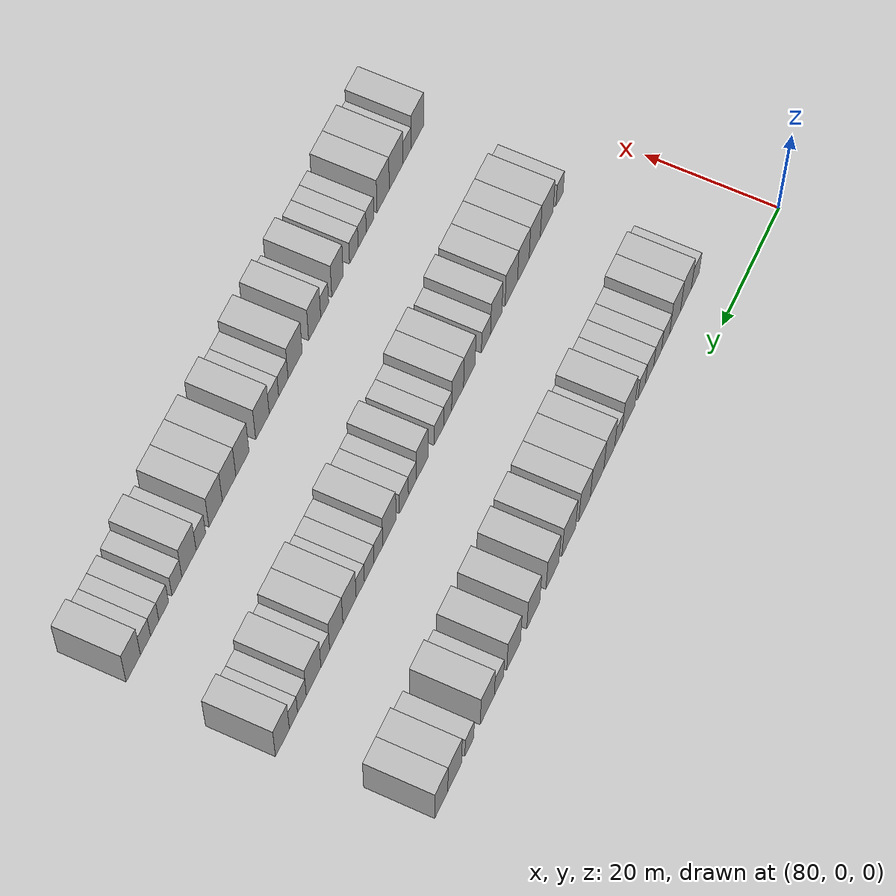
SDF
<sdf version="1.6">
 <world name="default">
  <model name="building_659">
   <static>1</static>
   <pose>91.0000 15.3468 0 0.000000 0.000000 0.000000</pose>
   <link name="link">
    <pose>0 0 3.00 0 0 0</pose>
    <collision name="collision"><geometry><box><size>10.0000 2.7629 6.0000</size></box></geometry></collision>
    <visual name="visual">
     <cast_shadows>0</cast_shadows>
     <geometry><box><size>10.0000 2.7629 6.0000</size></box></geometry>
     <material>
      <script>
       <uri>model://HANNAS_wall/materials/scripts</uri>
       <uri>model://HANNAS_wall/materials/textures</uri>
       <name>vrc/HANNAS_wall</name>
      </script>
     </material>
    </visual>
   </link>
  </model>
  <model name="building_660">
   <static>1</static>
   <pose>91.0000 18.6175 0 0.000000 0.000000 0.000000</pose>
   <link name="link">
    <pose>0 0 4.50 0 0 0</pose>
    <collision name="collision"><geometry><box><size>10.0000 3.7784 9.0000</size></box></geometry></collision>
    <visual name="visual">
     <cast_shadows>0</cast_shadows>
     <geometry><box><size>10.0000 3.7784 9.0000</size></box></geometry>
     <material>
      <script>
       <uri>model://HANNAS_wall/materials/scripts</uri>
       <uri>model://HANNAS_wall/materials/textures</uri>
       <name>vrc/HANNAS_wall</name>
      </script>
     </material>
    </visual>
   </link>
  </model>
  <model name="building_661">
   <static>1</static>
   <pose>91.0000 22.3762 0 0.000000 0.000000 0.000000</pose>
   <link name="link">
    <pose>0 0 4.50 0 0 0</pose>
    <collision name="collision"><geometry><box><size>10.0000 3.7389 9.0000</size></box></geometry></collision>
    <visual name="visual">
     <cast_shadows>0</cast_shadows>
     <geometry><box><size>10.0000 3.7389 9.0000</size></box></geometry>
     <material>
      <script>
       <uri>model://HANNAS_wall/materials/scripts</uri>
       <uri>model://HANNAS_wall/materials/textures</uri>
       <name>vrc/HANNAS_wall</name>
      </script>
     </material>
    </visual>
   </link>
  </model>
  <model name="building_662">
   <static>1</static>
   <pose>91.0000 25.6516 0 0.000000 0.000000 0.000000</pose>
   <link name="link">
    <pose>0 0 3.00 0 0 0</pose>
    <collision name="collision"><geometry><box><size>10.0000 2.8118 6.0000</size></box></geometry></collision>
    <visual name="visual">
     <cast_shadows>0</cast_shadows>
     <geometry><box><size>10.0000 2.8118 6.0000</size></box></geometry>
     <material>
      <script>
       <uri>model://HANNAS_wall/materials/scripts</uri>
       <uri>model://HANNAS_wall/materials/textures</uri>
       <name>vrc/HANNAS_wall</name>
      </script>
     </material>
    </visual>
   </link>
  </model>
  <model name="building_663">
   <static>1</static>
   <pose>91.0000 28.4060 0 0.000000 0.000000 0.000000</pose>
   <link name="link">
    <pose>0 0 3.00 0 0 0</pose>
    <collision name="collision"><geometry><box><size>10.0000 2.6970 6.0000</size></box></geometry></collision>
    <visual name="visual">
     <cast_shadows>0</cast_shadows>
     <geometry><box><size>10.0000 2.6970 6.0000</size></box></geometry>
     <material>
      <script>
       <uri>model://HANNAS_wall/materials/scripts</uri>
       <uri>model://HANNAS_wall/materials/textures</uri>
       <name>vrc/HANNAS_wall</name>
      </script>
     </material>
    </visual>
   </link>
  </model>
  <model name="building_664">
   <static>1</static>
   <pose>91.0000 31.1740 0 0.000000 0.000000 0.000000</pose>
   <link name="link">
    <pose>0 0 3.00 0 0 0</pose>
    <collision name="collision"><geometry><box><size>10.0000 2.8390 6.0000</size></box></geometry></collision>
    <visual name="visual">
     <cast_shadows>0</cast_shadows>
     <geometry><box><size>10.0000 2.8390 6.0000</size></box></geometry>
     <material>
      <script>
       <uri>model://HANNAS_wall/materials/scripts</uri>
       <uri>model://HANNAS_wall/materials/textures</uri>
       <name>vrc/HANNAS_wall</name>
      </script>
     </material>
    </visual>
   </link>
  </model>
  <model name="building_665">
   <static>1</static>
   <pose>91.0000 33.8432 0 0.000000 0.000000 0.000000</pose>
   <link name="link">
    <pose>0 0 3.00 0 0 0</pose>
    <collision name="collision"><geometry><box><size>10.0000 2.4995 6.0000</size></box></geometry></collision>
    <visual name="visual">
     <cast_shadows>0</cast_shadows>
     <geometry><box><size>10.0000 2.4995 6.0000</size></box></geometry>
     <material>
      <script>
       <uri>model://HANNAS_wall/materials/scripts</uri>
       <uri>model://HANNAS_wall/materials/textures</uri>
       <name>vrc/HANNAS_wall</name>
      </script>
     </material>
    </visual>
   </link>
  </model>
  <model name="building_666">
   <static>1</static>
   <pose>91.0000 38.2791 0 0.000000 0.000000 0.000000</pose>
   <link name="link">
    <pose>0 0 4.50 0 0 0</pose>
    <collision name="collision"><geometry><box><size>10.0000 4.3723 9.0000</size></box></geometry></collision>
    <visual name="visual">
     <cast_shadows>0</cast_shadows>
     <geometry><box><size>10.0000 4.3723 9.0000</size></box></geometry>
     <material>
      <script>
       <uri>model://HANNAS_wall/materials/scripts</uri>
       <uri>model://HANNAS_wall/materials/textures</uri>
       <name>vrc/HANNAS_wall</name>
      </script>
     </material>
    </visual>
   </link>
  </model>
  <model name="building_667">
   <static>1</static>
   <pose>91.0000 41.6919 0 0.000000 0.000000 0.000000</pose>
   <link name="link">
    <pose>0 0 3.00 0 0 0</pose>
    <collision name="collision"><geometry><box><size>10.0000 2.4534 6.0000</size></box></geometry></collision>
    <visual name="visual">
     <cast_shadows>0</cast_shadows>
     <geometry><box><size>10.0000 2.4534 6.0000</size></box></geometry>
     <material>
      <script>
       <uri>model://HANNAS_wall/materials/scripts</uri>
       <uri>model://HANNAS_wall/materials/textures</uri>
       <name>vrc/HANNAS_wall</name>
      </script>
     </material>
    </visual>
   </link>
  </model>
  <model name="building_668">
   <static>1</static>
   <pose>91.0000 44.7251 0 0.000000 0.000000 0.000000</pose>
   <link name="link">
    <pose>0 0 4.50 0 0 0</pose>
    <collision name="collision"><geometry><box><size>10.0000 3.6130 9.0000</size></box></geometry></collision>
    <visual name="visual">
     <cast_shadows>0</cast_shadows>
     <geometry><box><size>10.0000 3.6130 9.0000</size></box></geometry>
     <material>
      <script>
       <uri>model://HANNAS_wall/materials/scripts</uri>
       <uri>model://HANNAS_wall/materials/textures</uri>
       <name>vrc/HANNAS_wall</name>
      </script>
     </material>
    </visual>
   </link>
  </model>
  <model name="building_669">
   <static>1</static>
   <pose>91.0000 48.7719 0 0.000000 0.000000 0.000000</pose>
   <link name="link">
    <pose>0 0 4.50 0 0 0</pose>
    <collision name="collision"><geometry><box><size>10.0000 4.4805 9.0000</size></box></geometry></collision>
    <visual name="visual">
     <cast_shadows>0</cast_shadows>
     <geometry><box><size>10.0000 4.4805 9.0000</size></box></geometry>
     <material>
      <script>
       <uri>model://HANNAS_wall/materials/scripts</uri>
       <uri>model://HANNAS_wall/materials/textures</uri>
       <name>vrc/HANNAS_wall</name>
      </script>
     </material>
    </visual>
   </link>
  </model>
  <model name="building_670">
   <static>1</static>
   <pose>91.0000 52.9285 0 0.000000 0.000000 0.000000</pose>
   <link name="link">
    <pose>0 0 4.50 0 0 0</pose>
    <collision name="collision"><geometry><box><size>10.0000 3.8328 9.0000</size></box></geometry></collision>
    <visual name="visual">
     <cast_shadows>0</cast_shadows>
     <geometry><box><size>10.0000 3.8328 9.0000</size></box></geometry>
     <material>
      <script>
       <uri>model://HANNAS_wall/materials/scripts</uri>
       <uri>model://HANNAS_wall/materials/textures</uri>
       <name>vrc/HANNAS_wall</name>
      </script>
     </material>
    </visual>
   </link>
  </model>
  <model name="building_671">
   <static>1</static>
   <pose>91.0000 58.0701 0 0.000000 0.000000 0.000000</pose>
   <link name="link">
    <pose>0 0 4.50 0 0 0</pose>
    <collision name="collision"><geometry><box><size>10.0000 4.4502 9.0000</size></box></geometry></collision>
    <visual name="visual">
     <cast_shadows>0</cast_shadows>
     <geometry><box><size>10.0000 4.4502 9.0000</size></box></geometry>
     <material>
      <script>
       <uri>model://HANNAS_wall/materials/scripts</uri>
       <uri>model://HANNAS_wall/materials/textures</uri>
       <name>vrc/HANNAS_wall</name>
      </script>
     </material>
    </visual>
   </link>
  </model>
  <model name="building_672">
   <static>1</static>
   <pose>91.0000 63.3737 0 0.000000 0.000000 0.000000</pose>
   <link name="link">
    <pose>0 0 4.50 0 0 0</pose>
    <collision name="collision"><geometry><box><size>10.0000 4.1570 9.0000</size></box></geometry></collision>
    <visual name="visual">
     <cast_shadows>0</cast_shadows>
     <geometry><box><size>10.0000 4.1570 9.0000</size></box></geometry>
     <material>
      <script>
       <uri>model://HANNAS_wall/materials/scripts</uri>
       <uri>model://HANNAS_wall/materials/textures</uri>
       <name>vrc/HANNAS_wall</name>
      </script>
     </material>
    </visual>
   </link>
  </model>
  <model name="building_673">
   <static>1</static>
   <pose>91.0000 69.5273 0 0.000000 0.000000 0.000000</pose>
   <link name="link">
    <pose>0 0 4.50 0 0 0</pose>
    <collision name="collision"><geometry><box><size>10.0000 4.1501 9.0000</size></box></geometry></collision>
    <visual name="visual">
     <cast_shadows>0</cast_shadows>
     <geometry><box><size>10.0000 4.1501 9.0000</size></box></geometry>
     <material>
      <script>
       <uri>model://HANNAS_wall/materials/scripts</uri>
       <uri>model://HANNAS_wall/materials/textures</uri>
       <name>vrc/HANNAS_wall</name>
      </script>
     </material>
    </visual>
   </link>
  </model>
  <model name="building_674">
   <static>1</static>
   <pose>91.0000 75.7723 0 0.000000 0.000000 0.000000</pose>
   <link name="link">
    <pose>0 0 4.50 0 0 0</pose>
    <collision name="collision"><geometry><box><size>10.0000 4.3399 9.0000</size></box></geometry></collision>
    <visual name="visual">
     <cast_shadows>0</cast_shadows>
     <geometry><box><size>10.0000 4.3399 9.0000</size></box></geometry>
     <material>
      <script>
       <uri>model://HANNAS_wall/materials/scripts</uri>
       <uri>model://HANNAS_wall/materials/textures</uri>
       <name>vrc/HANNAS_wall</name>
      </script>
     </material>
    </visual>
   </link>
  </model>
  <model name="building_675">
   <static>1</static>
   <pose>91.0000 80.3836 0 0.000000 0.000000 0.000000</pose>
   <link name="link">
    <pose>0 0 3.00 0 0 0</pose>
    <collision name="collision"><geometry><box><size>10.0000 2.8828 6.0000</size></box></geometry></collision>
    <visual name="visual">
     <cast_shadows>0</cast_shadows>
     <geometry><box><size>10.0000 2.8828 6.0000</size></box></geometry>
     <material>
      <script>
       <uri>model://HANNAS_wall/materials/scripts</uri>
       <uri>model://HANNAS_wall/materials/textures</uri>
       <name>vrc/HANNAS_wall</name>
      </script>
     </material>
    </visual>
   </link>
  </model>
  <model name="building_676">
   <static>1</static>
   <pose>91.0000 84.0200 0 0.000000 0.000000 0.000000</pose>
   <link name="link">
    <pose>0 0 4.50 0 0 0</pose>
    <collision name="collision"><geometry><box><size>10.0000 4.3899 9.0000</size></box></geometry></collision>
    <visual name="visual">
     <cast_shadows>0</cast_shadows>
     <geometry><box><size>10.0000 4.3899 9.0000</size></box></geometry>
     <material>
      <script>
       <uri>model://HANNAS_wall/materials/scripts</uri>
       <uri>model://HANNAS_wall/materials/textures</uri>
       <name>vrc/HANNAS_wall</name>
      </script>
     </material>
    </visual>
   </link>
  </model>
  <model name="building_677">
   <static>1</static>
   <pose>91.0000 89.5846 0 0.000000 0.000000 0.000000</pose>
   <link name="link">
    <pose>0 0 3.00 0 0 0</pose>
    <collision name="collision"><geometry><box><size>10.0000 2.7393 6.0000</size></box></geometry></collision>
    <visual name="visual">
     <cast_shadows>0</cast_shadows>
     <geometry><box><size>10.0000 2.7393 6.0000</size></box></geometry>
     <material>
      <script>
       <uri>model://HANNAS_wall/materials/scripts</uri>
       <uri>model://HANNAS_wall/materials/textures</uri>
       <name>vrc/HANNAS_wall</name>
      </script>
     </material>
    </visual>
   </link>
  </model>
  <model name="building_678">
   <static>1</static>
   <pose>91.0000 94.0769 0 0.000000 0.000000 0.000000</pose>
   <link name="link">
    <pose>0 0 4.50 0 0 0</pose>
    <collision name="collision"><geometry><box><size>10.0000 4.2452 9.0000</size></box></geometry></collision>
    <visual name="visual">
     <cast_shadows>0</cast_shadows>
     <geometry><box><size>10.0000 4.2452 9.0000</size></box></geometry>
     <material>
      <script>
       <uri>model://HANNAS_wall/materials/scripts</uri>
       <uri>model://HANNAS_wall/materials/textures</uri>
       <name>vrc/HANNAS_wall</name>
      </script>
     </material>
    </visual>
   </link>
  </model>
  <model name="building_679">
   <static>1</static>
   <pose>91.0000 98.1756 0 0.000000 0.000000 0.000000</pose>
   <link name="link">
    <pose>0 0 4.50 0 0 0</pose>
    <collision name="collision"><geometry><box><size>10.0000 3.9523 9.0000</size></box></geometry></collision>
    <visual name="visual">
     <cast_shadows>0</cast_shadows>
     <geometry><box><size>10.0000 3.9523 9.0000</size></box></geometry>
     <material>
      <script>
       <uri>model://HANNAS_wall/materials/scripts</uri>
       <uri>model://HANNAS_wall/materials/textures</uri>
       <name>vrc/HANNAS_wall</name>
      </script>
     </material>
    </visual>
   </link>
  </model>
  <model name="building_828">
   <static>1</static>
   <pose>113.0000 11.4214 0 0.000000 0.000000 0.000000</pose>
   <link name="link">
    <pose>0 0 3.00 0 0 0</pose>
    <collision name="collision"><geometry><box><size>10.0000 2.4362 6.0000</size></box></geometry></collision>
    <visual name="visual">
     <cast_shadows>0</cast_shadows>
     <geometry><box><size>10.0000 2.4362 6.0000</size></box></geometry>
     <material>
      <script>
       <uri>model://HANNAS_wall/materials/scripts</uri>
       <uri>model://HANNAS_wall/materials/textures</uri>
       <name>vrc/HANNAS_wall</name>
      </script>
     </material>
    </visual>
   </link>
  </model>
  <model name="building_829">
   <static>1</static>
   <pose>113.0000 15.8109 0 0.000000 0.000000 0.000000</pose>
   <link name="link">
    <pose>0 0 4.50 0 0 0</pose>
    <collision name="collision"><geometry><box><size>10.0000 4.3428 9.0000</size></box></geometry></collision>
    <visual name="visual">
     <cast_shadows>0</cast_shadows>
     <geometry><box><size>10.0000 4.3428 9.0000</size></box></geometry>
     <material>
      <script>
       <uri>model://HANNAS_wall/materials/scripts</uri>
       <uri>model://HANNAS_wall/materials/textures</uri>
       <name>vrc/HANNAS_wall</name>
      </script>
     </material>
    </visual>
   </link>
  </model>
  <model name="building_830">
   <static>1</static>
   <pose>113.0000 19.8639 0 0.000000 0.000000 0.000000</pose>
   <link name="link">
    <pose>0 0 4.50 0 0 0</pose>
    <collision name="collision"><geometry><box><size>10.0000 3.7632 9.0000</size></box></geometry></collision>
    <visual name="visual">
     <cast_shadows>0</cast_shadows>
     <geometry><box><size>10.0000 3.7632 9.0000</size></box></geometry>
     <material>
      <script>
       <uri>model://HANNAS_wall/materials/scripts</uri>
       <uri>model://HANNAS_wall/materials/textures</uri>
       <name>vrc/HANNAS_wall</name>
      </script>
     </material>
    </visual>
   </link>
  </model>
  <model name="building_831">
   <static>1</static>
   <pose>113.0000 23.6717 0 0.000000 0.000000 0.000000</pose>
   <link name="link">
    <pose>0 0 4.50 0 0 0</pose>
    <collision name="collision"><geometry><box><size>10.0000 3.8522 9.0000</size></box></geometry></collision>
    <visual name="visual">
     <cast_shadows>0</cast_shadows>
     <geometry><box><size>10.0000 3.8522 9.0000</size></box></geometry>
     <material>
      <script>
       <uri>model://HANNAS_wall/materials/scripts</uri>
       <uri>model://HANNAS_wall/materials/textures</uri>
       <name>vrc/HANNAS_wall</name>
      </script>
     </material>
    </visual>
   </link>
  </model>
  <model name="building_832">
   <static>1</static>
   <pose>113.0000 27.6825 0 0.000000 0.000000 0.000000</pose>
   <link name="link">
    <pose>0 0 4.50 0 0 0</pose>
    <collision name="collision"><geometry><box><size>10.0000 4.1694 9.0000</size></box></geometry></collision>
    <visual name="visual">
     <cast_shadows>0</cast_shadows>
     <geometry><box><size>10.0000 4.1694 9.0000</size></box></geometry>
     <material>
      <script>
       <uri>model://HANNAS_wall/materials/scripts</uri>
       <uri>model://HANNAS_wall/materials/textures</uri>
       <name>vrc/HANNAS_wall</name>
      </script>
     </material>
    </visual>
   </link>
  </model>
  <model name="building_833">
   <static>1</static>
   <pose>113.0000 32.6495 0 0.000000 0.000000 0.000000</pose>
   <link name="link">
    <pose>0 0 4.50 0 0 0</pose>
    <collision name="collision"><geometry><box><size>10.0000 3.7647 9.0000</size></box></geometry></collision>
    <visual name="visual">
     <cast_shadows>0</cast_shadows>
     <geometry><box><size>10.0000 3.7647 9.0000</size></box></geometry>
     <material>
      <script>
       <uri>model://HANNAS_wall/materials/scripts</uri>
       <uri>model://HANNAS_wall/materials/textures</uri>
       <name>vrc/HANNAS_wall</name>
      </script>
     </material>
    </visual>
   </link>
  </model>
  <model name="building_834">
   <static>1</static>
   <pose>113.0000 36.0268 0 0.000000 0.000000 0.000000</pose>
   <link name="link">
    <pose>0 0 3.00 0 0 0</pose>
    <collision name="collision"><geometry><box><size>10.0000 2.9899 6.0000</size></box></geometry></collision>
    <visual name="visual">
     <cast_shadows>0</cast_shadows>
     <geometry><box><size>10.0000 2.9899 6.0000</size></box></geometry>
     <material>
      <script>
       <uri>model://HANNAS_wall/materials/scripts</uri>
       <uri>model://HANNAS_wall/materials/textures</uri>
       <name>vrc/HANNAS_wall</name>
      </script>
     </material>
    </visual>
   </link>
  </model>
  <model name="building_835">
   <static>1</static>
   <pose>113.0000 41.4151 0 0.000000 0.000000 0.000000</pose>
   <link name="link">
    <pose>0 0 4.50 0 0 0</pose>
    <collision name="collision"><geometry><box><size>10.0000 3.7868 9.0000</size></box></geometry></collision>
    <visual name="visual">
     <cast_shadows>0</cast_shadows>
     <geometry><box><size>10.0000 3.7868 9.0000</size></box></geometry>
     <material>
      <script>
       <uri>model://HANNAS_wall/materials/scripts</uri>
       <uri>model://HANNAS_wall/materials/textures</uri>
       <name>vrc/HANNAS_wall</name>
      </script>
     </material>
    </visual>
   </link>
  </model>
  <model name="building_836">
   <static>1</static>
   <pose>113.0000 45.2289 0 0.000000 0.000000 0.000000</pose>
   <link name="link">
    <pose>0 0 4.50 0 0 0</pose>
    <collision name="collision"><geometry><box><size>10.0000 3.8407 9.0000</size></box></geometry></collision>
    <visual name="visual">
     <cast_shadows>0</cast_shadows>
     <geometry><box><size>10.0000 3.8407 9.0000</size></box></geometry>
     <material>
      <script>
       <uri>model://HANNAS_wall/materials/scripts</uri>
       <uri>model://HANNAS_wall/materials/textures</uri>
       <name>vrc/HANNAS_wall</name>
      </script>
     </material>
    </visual>
   </link>
  </model>
  <model name="building_837">
   <static>1</static>
   <pose>113.0000 48.4443 0 0.000000 0.000000 0.000000</pose>
   <link name="link">
    <pose>0 0 3.00 0 0 0</pose>
    <collision name="collision"><geometry><box><size>10.0000 2.5900 6.0000</size></box></geometry></collision>
    <visual name="visual">
     <cast_shadows>0</cast_shadows>
     <geometry><box><size>10.0000 2.5900 6.0000</size></box></geometry>
     <material>
      <script>
       <uri>model://HANNAS_wall/materials/scripts</uri>
       <uri>model://HANNAS_wall/materials/textures</uri>
       <name>vrc/HANNAS_wall</name>
      </script>
     </material>
    </visual>
   </link>
  </model>
  <model name="building_838">
   <static>1</static>
   <pose>113.0000 51.2341 0 0.000000 0.000000 0.000000</pose>
   <link name="link">
    <pose>0 0 3.00 0 0 0</pose>
    <collision name="collision"><geometry><box><size>10.0000 2.9896 6.0000</size></box></geometry></collision>
    <visual name="visual">
     <cast_shadows>0</cast_shadows>
     <geometry><box><size>10.0000 2.9896 6.0000</size></box></geometry>
     <material>
      <script>
       <uri>model://HANNAS_wall/materials/scripts</uri>
       <uri>model://HANNAS_wall/materials/textures</uri>
       <name>vrc/HANNAS_wall</name>
      </script>
     </material>
    </visual>
   </link>
  </model>
  <model name="building_839">
   <static>1</static>
   <pose>113.0000 56.5635 0 0.000000 0.000000 0.000000</pose>
   <link name="link">
    <pose>0 0 4.50 0 0 0</pose>
    <collision name="collision"><geometry><box><size>10.0000 3.6692 9.0000</size></box></geometry></collision>
    <visual name="visual">
     <cast_shadows>0</cast_shadows>
     <geometry><box><size>10.0000 3.6692 9.0000</size></box></geometry>
     <material>
      <script>
       <uri>model://HANNAS_wall/materials/scripts</uri>
       <uri>model://HANNAS_wall/materials/textures</uri>
       <name>vrc/HANNAS_wall</name>
      </script>
     </material>
    </visual>
   </link>
  </model>
  <model name="building_840">
   <static>1</static>
   <pose>113.0000 59.6320 0 0.000000 0.000000 0.000000</pose>
   <link name="link">
    <pose>0 0 3.00 0 0 0</pose>
    <collision name="collision"><geometry><box><size>10.0000 2.4679 6.0000</size></box></geometry></collision>
    <visual name="visual">
     <cast_shadows>0</cast_shadows>
     <geometry><box><size>10.0000 2.4679 6.0000</size></box></geometry>
     <material>
      <script>
       <uri>model://HANNAS_wall/materials/scripts</uri>
       <uri>model://HANNAS_wall/materials/textures</uri>
       <name>vrc/HANNAS_wall</name>
      </script>
     </material>
    </visual>
   </link>
  </model>
  <model name="building_841">
   <static>1</static>
   <pose>113.0000 62.2897 0 0.000000 0.000000 0.000000</pose>
   <link name="link">
    <pose>0 0 3.00 0 0 0</pose>
    <collision name="collision"><geometry><box><size>10.0000 2.8473 6.0000</size></box></geometry></collision>
    <visual name="visual">
     <cast_shadows>0</cast_shadows>
     <geometry><box><size>10.0000 2.8473 6.0000</size></box></geometry>
     <material>
      <script>
       <uri>model://HANNAS_wall/materials/scripts</uri>
       <uri>model://HANNAS_wall/materials/textures</uri>
       <name>vrc/HANNAS_wall</name>
      </script>
     </material>
    </visual>
   </link>
  </model>
  <model name="building_842">
   <static>1</static>
   <pose>113.0000 66.7832 0 0.000000 0.000000 0.000000</pose>
   <link name="link">
    <pose>0 0 4.50 0 0 0</pose>
    <collision name="collision"><geometry><box><size>10.0000 4.1398 9.0000</size></box></geometry></collision>
    <visual name="visual">
     <cast_shadows>0</cast_shadows>
     <geometry><box><size>10.0000 4.1398 9.0000</size></box></geometry>
     <material>
      <script>
       <uri>model://HANNAS_wall/materials/scripts</uri>
       <uri>model://HANNAS_wall/materials/textures</uri>
       <name>vrc/HANNAS_wall</name>
      </script>
     </material>
    </visual>
   </link>
  </model>
  <model name="building_843">
   <static>1</static>
   <pose>113.0000 70.2111 0 0.000000 0.000000 0.000000</pose>
   <link name="link">
    <pose>0 0 3.00 0 0 0</pose>
    <collision name="collision"><geometry><box><size>10.0000 2.7159 6.0000</size></box></geometry></collision>
    <visual name="visual">
     <cast_shadows>0</cast_shadows>
     <geometry><box><size>10.0000 2.7159 6.0000</size></box></geometry>
     <material>
      <script>
       <uri>model://HANNAS_wall/materials/scripts</uri>
       <uri>model://HANNAS_wall/materials/textures</uri>
       <name>vrc/HANNAS_wall</name>
      </script>
     </material>
    </visual>
   </link>
  </model>
  <model name="building_844">
   <static>1</static>
   <pose>113.0000 73.0500 0 0.000000 0.000000 0.000000</pose>
   <link name="link">
    <pose>0 0 3.00 0 0 0</pose>
    <collision name="collision"><geometry><box><size>10.0000 2.9618 6.0000</size></box></geometry></collision>
    <visual name="visual">
     <cast_shadows>0</cast_shadows>
     <geometry><box><size>10.0000 2.9618 6.0000</size></box></geometry>
     <material>
      <script>
       <uri>model://HANNAS_wall/materials/scripts</uri>
       <uri>model://HANNAS_wall/materials/textures</uri>
       <name>vrc/HANNAS_wall</name>
      </script>
     </material>
    </visual>
   </link>
  </model>
  <model name="building_845">
   <static>1</static>
   <pose>113.0000 75.7841 0 0.000000 0.000000 0.000000</pose>
   <link name="link">
    <pose>0 0 3.00 0 0 0</pose>
    <collision name="collision"><geometry><box><size>10.0000 2.5065 6.0000</size></box></geometry></collision>
    <visual name="visual">
     <cast_shadows>0</cast_shadows>
     <geometry><box><size>10.0000 2.5065 6.0000</size></box></geometry>
     <material>
      <script>
       <uri>model://HANNAS_wall/materials/scripts</uri>
       <uri>model://HANNAS_wall/materials/textures</uri>
       <name>vrc/HANNAS_wall</name>
      </script>
     </material>
    </visual>
   </link>
  </model>
  <model name="building_846">
   <static>1</static>
   <pose>113.0000 79.0547 0 0.000000 0.000000 0.000000</pose>
   <link name="link">
    <pose>0 0 4.50 0 0 0</pose>
    <collision name="collision"><geometry><box><size>10.0000 4.0345 9.0000</size></box></geometry></collision>
    <visual name="visual">
     <cast_shadows>0</cast_shadows>
     <geometry><box><size>10.0000 4.0345 9.0000</size></box></geometry>
     <material>
      <script>
       <uri>model://HANNAS_wall/materials/scripts</uri>
       <uri>model://HANNAS_wall/materials/textures</uri>
       <name>vrc/HANNAS_wall</name>
      </script>
     </material>
    </visual>
   </link>
  </model>
  <model name="building_847">
   <static>1</static>
   <pose>113.0000 83.0826 0 0.000000 0.000000 0.000000</pose>
   <link name="link">
    <pose>0 0 4.50 0 0 0</pose>
    <collision name="collision"><geometry><box><size>10.0000 4.0214 9.0000</size></box></geometry></collision>
    <visual name="visual">
     <cast_shadows>0</cast_shadows>
     <geometry><box><size>10.0000 4.0214 9.0000</size></box></geometry>
     <material>
      <script>
       <uri>model://HANNAS_wall/materials/scripts</uri>
       <uri>model://HANNAS_wall/materials/textures</uri>
       <name>vrc/HANNAS_wall</name>
      </script>
     </material>
    </visual>
   </link>
  </model>
  <model name="building_848">
   <static>1</static>
   <pose>113.0000 86.4097 0 0.000000 0.000000 0.000000</pose>
   <link name="link">
    <pose>0 0 3.00 0 0 0</pose>
    <collision name="collision"><geometry><box><size>10.0000 2.6328 6.0000</size></box></geometry></collision>
    <visual name="visual">
     <cast_shadows>0</cast_shadows>
     <geometry><box><size>10.0000 2.6328 6.0000</size></box></geometry>
     <material>
      <script>
       <uri>model://HANNAS_wall/materials/scripts</uri>
       <uri>model://HANNAS_wall/materials/textures</uri>
       <name>vrc/HANNAS_wall</name>
      </script>
     </material>
    </visual>
   </link>
  </model>
  <model name="building_849">
   <static>1</static>
   <pose>113.0000 89.9124 0 0.000000 0.000000 0.000000</pose>
   <link name="link">
    <pose>0 0 4.50 0 0 0</pose>
    <collision name="collision"><geometry><box><size>10.0000 4.3726 9.0000</size></box></geometry></collision>
    <visual name="visual">
     <cast_shadows>0</cast_shadows>
     <geometry><box><size>10.0000 4.3726 9.0000</size></box></geometry>
     <material>
      <script>
       <uri>model://HANNAS_wall/materials/scripts</uri>
       <uri>model://HANNAS_wall/materials/textures</uri>
       <name>vrc/HANNAS_wall</name>
      </script>
     </material>
    </visual>
   </link>
  </model>
  <model name="building_850">
   <static>1</static>
   <pose>113.0000 93.3868 0 0.000000 0.000000 0.000000</pose>
   <link name="link">
    <pose>0 0 3.00 0 0 0</pose>
    <collision name="collision"><geometry><box><size>10.0000 2.5763 6.0000</size></box></geometry></collision>
    <visual name="visual">
     <cast_shadows>0</cast_shadows>
     <geometry><box><size>10.0000 2.5763 6.0000</size></box></geometry>
     <material>
      <script>
       <uri>model://HANNAS_wall/materials/scripts</uri>
       <uri>model://HANNAS_wall/materials/textures</uri>
       <name>vrc/HANNAS_wall</name>
      </script>
     </material>
    </visual>
   </link>
  </model>
  <model name="building_851">
   <static>1</static>
   <pose>113.0000 95.8864 0 0.000000 0.000000 0.000000</pose>
   <link name="link">
    <pose>0 0 3.00 0 0 0</pose>
    <collision name="collision"><geometry><box><size>10.0000 2.4229 6.0000</size></box></geometry></collision>
    <visual name="visual">
     <cast_shadows>0</cast_shadows>
     <geometry><box><size>10.0000 2.4229 6.0000</size></box></geometry>
     <material>
      <script>
       <uri>model://HANNAS_wall/materials/scripts</uri>
       <uri>model://HANNAS_wall/materials/textures</uri>
       <name>vrc/HANNAS_wall</name>
      </script>
     </material>
    </visual>
   </link>
  </model>
  <model name="building_852">
   <static>1</static>
   <pose>113.0000 99.1384 0 0.000000 0.000000 0.000000</pose>
   <link name="link">
    <pose>0 0 4.50 0 0 0</pose>
    <collision name="collision"><geometry><box><size>10.0000 4.0811 9.0000</size></box></geometry></collision>
    <visual name="visual">
     <cast_shadows>0</cast_shadows>
     <geometry><box><size>10.0000 4.0811 9.0000</size></box></geometry>
     <material>
      <script>
       <uri>model://HANNAS_wall/materials/scripts</uri>
       <uri>model://HANNAS_wall/materials/textures</uri>
       <name>vrc/HANNAS_wall</name>
      </script>
     </material>
    </visual>
   </link>
  </model>
  <model name="building_1026">
   <static>1</static>
   <pose>135.0000 10.6931 0 0.000000 0.000000 0.000000</pose>
   <link name="link">
    <pose>0 0 4.50 0 0 0</pose>
    <collision name="collision"><geometry><box><size>10.0000 4.1592 9.0000</size></box></geometry></collision>
    <visual name="visual">
     <cast_shadows>0</cast_shadows>
     <geometry><box><size>10.0000 4.1592 9.0000</size></box></geometry>
     <material>
      <script>
       <uri>model://HANNAS_wall/materials/scripts</uri>
       <uri>model://HANNAS_wall/materials/textures</uri>
       <name>vrc/HANNAS_wall</name>
      </script>
     </material>
    </visual>
   </link>
  </model>
  <model name="building_1027">
   <static>1</static>
   <pose>135.0000 14.0968 0 0.000000 0.000000 0.000000</pose>
   <link name="link">
    <pose>0 0 3.00 0 0 0</pose>
    <collision name="collision"><geometry><box><size>10.0000 2.6481 6.0000</size></box></geometry></collision>
    <visual name="visual">
     <cast_shadows>0</cast_shadows>
     <geometry><box><size>10.0000 2.6481 6.0000</size></box></geometry>
     <material>
      <script>
       <uri>model://HANNAS_wall/materials/scripts</uri>
       <uri>model://HANNAS_wall/materials/textures</uri>
       <name>vrc/HANNAS_wall</name>
      </script>
     </material>
    </visual>
   </link>
  </model>
  <model name="building_1028">
   <static>1</static>
   <pose>135.0000 17.6628 0 0.000000 0.000000 0.000000</pose>
   <link name="link">
    <pose>0 0 4.50 0 0 0</pose>
    <collision name="collision"><geometry><box><size>10.0000 4.4839 9.0000</size></box></geometry></collision>
    <visual name="visual">
     <cast_shadows>0</cast_shadows>
     <geometry><box><size>10.0000 4.4839 9.0000</size></box></geometry>
     <material>
      <script>
       <uri>model://HANNAS_wall/materials/scripts</uri>
       <uri>model://HANNAS_wall/materials/textures</uri>
       <name>vrc/HANNAS_wall</name>
      </script>
     </material>
    </visual>
   </link>
  </model>
  <model name="building_1029">
   <static>1</static>
   <pose>135.0000 21.9018 0 0.000000 0.000000 0.000000</pose>
   <link name="link">
    <pose>0 0 4.50 0 0 0</pose>
    <collision name="collision"><geometry><box><size>10.0000 3.9942 9.0000</size></box></geometry></collision>
    <visual name="visual">
     <cast_shadows>0</cast_shadows>
     <geometry><box><size>10.0000 3.9942 9.0000</size></box></geometry>
     <material>
      <script>
       <uri>model://HANNAS_wall/materials/scripts</uri>
       <uri>model://HANNAS_wall/materials/textures</uri>
       <name>vrc/HANNAS_wall</name>
      </script>
     </material>
    </visual>
   </link>
  </model>
  <model name="building_1030">
   <static>1</static>
   <pose>135.0000 26.1357 0 0.000000 0.000000 0.000000</pose>
   <link name="link">
    <pose>0 0 3.00 0 0 0</pose>
    <collision name="collision"><geometry><box><size>10.0000 2.4736 6.0000</size></box></geometry></collision>
    <visual name="visual">
     <cast_shadows>0</cast_shadows>
     <geometry><box><size>10.0000 2.4736 6.0000</size></box></geometry>
     <material>
      <script>
       <uri>model://HANNAS_wall/materials/scripts</uri>
       <uri>model://HANNAS_wall/materials/textures</uri>
       <name>vrc/HANNAS_wall</name>
      </script>
     </material>
    </visual>
   </link>
  </model>
  <model name="building_1031">
   <static>1</static>
   <pose>135.0000 28.6655 0 0.000000 0.000000 0.000000</pose>
   <link name="link">
    <pose>0 0 3.00 0 0 0</pose>
    <collision name="collision"><geometry><box><size>10.0000 2.5860 6.0000</size></box></geometry></collision>
    <visual name="visual">
     <cast_shadows>0</cast_shadows>
     <geometry><box><size>10.0000 2.5860 6.0000</size></box></geometry>
     <material>
      <script>
       <uri>model://HANNAS_wall/materials/scripts</uri>
       <uri>model://HANNAS_wall/materials/textures</uri>
       <name>vrc/HANNAS_wall</name>
      </script>
     </material>
    </visual>
   </link>
  </model>
  <model name="building_1032">
   <static>1</static>
   <pose>135.0000 31.3455 0 0.000000 0.000000 0.000000</pose>
   <link name="link">
    <pose>0 0 3.00 0 0 0</pose>
    <collision name="collision"><geometry><box><size>10.0000 2.7741 6.0000</size></box></geometry></collision>
    <visual name="visual">
     <cast_shadows>0</cast_shadows>
     <geometry><box><size>10.0000 2.7741 6.0000</size></box></geometry>
     <material>
      <script>
       <uri>model://HANNAS_wall/materials/scripts</uri>
       <uri>model://HANNAS_wall/materials/textures</uri>
       <name>vrc/HANNAS_wall</name>
      </script>
     </material>
    </visual>
   </link>
  </model>
  <model name="building_1033">
   <static>1</static>
   <pose>135.0000 36.5559 0 0.000000 0.000000 0.000000</pose>
   <link name="link">
    <pose>0 0 4.50 0 0 0</pose>
    <collision name="collision"><geometry><box><size>10.0000 3.6467 9.0000</size></box></geometry></collision>
    <visual name="visual">
     <cast_shadows>0</cast_shadows>
     <geometry><box><size>10.0000 3.6467 9.0000</size></box></geometry>
     <material>
      <script>
       <uri>model://HANNAS_wall/materials/scripts</uri>
       <uri>model://HANNAS_wall/materials/textures</uri>
       <name>vrc/HANNAS_wall</name>
      </script>
     </material>
    </visual>
   </link>
  </model>
  <model name="building_1034">
   <static>1</static>
   <pose>135.0000 40.6248 0 0.000000 0.000000 0.000000</pose>
   <link name="link">
    <pose>0 0 3.00 0 0 0</pose>
    <collision name="collision"><geometry><box><size>10.0000 2.4912 6.0000</size></box></geometry></collision>
    <visual name="visual">
     <cast_shadows>0</cast_shadows>
     <geometry><box><size>10.0000 2.4912 6.0000</size></box></geometry>
     <material>
      <script>
       <uri>model://HANNAS_wall/materials/scripts</uri>
       <uri>model://HANNAS_wall/materials/textures</uri>
       <name>vrc/HANNAS_wall</name>
      </script>
     </material>
    </visual>
   </link>
  </model>
  <model name="building_1035">
   <static>1</static>
   <pose>135.0000 43.7620 0 0.000000 0.000000 0.000000</pose>
   <link name="link">
    <pose>0 0 4.50 0 0 0</pose>
    <collision name="collision"><geometry><box><size>10.0000 3.7833 9.0000</size></box></geometry></collision>
    <visual name="visual">
     <cast_shadows>0</cast_shadows>
     <geometry><box><size>10.0000 3.7833 9.0000</size></box></geometry>
     <material>
      <script>
       <uri>model://HANNAS_wall/materials/scripts</uri>
       <uri>model://HANNAS_wall/materials/textures</uri>
       <name>vrc/HANNAS_wall</name>
      </script>
     </material>
    </visual>
   </link>
  </model>
  <model name="building_1036">
   <static>1</static>
   <pose>135.0000 49.8543 0 0.000000 0.000000 0.000000</pose>
   <link name="link">
    <pose>0 0 4.50 0 0 0</pose>
    <collision name="collision"><geometry><box><size>10.0000 4.4013 9.0000</size></box></geometry></collision>
    <visual name="visual">
     <cast_shadows>0</cast_shadows>
     <geometry><box><size>10.0000 4.4013 9.0000</size></box></geometry>
     <material>
      <script>
       <uri>model://HANNAS_wall/materials/scripts</uri>
       <uri>model://HANNAS_wall/materials/textures</uri>
       <name>vrc/HANNAS_wall</name>
      </script>
     </material>
    </visual>
   </link>
  </model>
  <model name="building_1037">
   <static>1</static>
   <pose>135.0000 53.5062 0 0.000000 0.000000 0.000000</pose>
   <link name="link">
    <pose>0 0 3.00 0 0 0</pose>
    <collision name="collision"><geometry><box><size>10.0000 2.9024 6.0000</size></box></geometry></collision>
    <visual name="visual">
     <cast_shadows>0</cast_shadows>
     <geometry><box><size>10.0000 2.9024 6.0000</size></box></geometry>
     <material>
      <script>
       <uri>model://HANNAS_wall/materials/scripts</uri>
       <uri>model://HANNAS_wall/materials/textures</uri>
       <name>vrc/HANNAS_wall</name>
      </script>
     </material>
    </visual>
   </link>
  </model>
  <model name="building_1038">
   <static>1</static>
   <pose>135.0000 56.4054 0 0.000000 0.000000 0.000000</pose>
   <link name="link">
    <pose>0 0 3.00 0 0 0</pose>
    <collision name="collision"><geometry><box><size>10.0000 2.8960 6.0000</size></box></geometry></collision>
    <visual name="visual">
     <cast_shadows>0</cast_shadows>
     <geometry><box><size>10.0000 2.8960 6.0000</size></box></geometry>
     <material>
      <script>
       <uri>model://HANNAS_wall/materials/scripts</uri>
       <uri>model://HANNAS_wall/materials/textures</uri>
       <name>vrc/HANNAS_wall</name>
      </script>
     </material>
    </visual>
   </link>
  </model>
  <model name="building_1039">
   <static>1</static>
   <pose>135.0000 59.9205 0 0.000000 0.000000 0.000000</pose>
   <link name="link">
    <pose>0 0 4.50 0 0 0</pose>
    <collision name="collision"><geometry><box><size>10.0000 4.1341 9.0000</size></box></geometry></collision>
    <visual name="visual">
     <cast_shadows>0</cast_shadows>
     <geometry><box><size>10.0000 4.1341 9.0000</size></box></geometry>
     <material>
      <script>
       <uri>model://HANNAS_wall/materials/scripts</uri>
       <uri>model://HANNAS_wall/materials/textures</uri>
       <name>vrc/HANNAS_wall</name>
      </script>
     </material>
    </visual>
   </link>
  </model>
  <model name="building_1040">
   <static>1</static>
   <pose>135.0000 65.9721 0 0.000000 0.000000 0.000000</pose>
   <link name="link">
    <pose>0 0 4.50 0 0 0</pose>
    <collision name="collision"><geometry><box><size>10.0000 3.9690 9.0000</size></box></geometry></collision>
    <visual name="visual">
     <cast_shadows>0</cast_shadows>
     <geometry><box><size>10.0000 3.9690 9.0000</size></box></geometry>
     <material>
      <script>
       <uri>model://HANNAS_wall/materials/scripts</uri>
       <uri>model://HANNAS_wall/materials/textures</uri>
       <name>vrc/HANNAS_wall</name>
      </script>
     </material>
    </visual>
   </link>
  </model>
  <model name="building_1041">
   <static>1</static>
   <pose>135.0000 69.9867 0 0.000000 0.000000 0.000000</pose>
   <link name="link">
    <pose>0 0 4.50 0 0 0</pose>
    <collision name="collision"><geometry><box><size>10.0000 4.0603 9.0000</size></box></geometry></collision>
    <visual name="visual">
     <cast_shadows>0</cast_shadows>
     <geometry><box><size>10.0000 4.0603 9.0000</size></box></geometry>
     <material>
      <script>
       <uri>model://HANNAS_wall/materials/scripts</uri>
       <uri>model://HANNAS_wall/materials/textures</uri>
       <name>vrc/HANNAS_wall</name>
      </script>
     </material>
    </visual>
   </link>
  </model>
  <model name="building_1042">
   <static>1</static>
   <pose>135.0000 74.0163 0 0.000000 0.000000 0.000000</pose>
   <link name="link">
    <pose>0 0 4.50 0 0 0</pose>
    <collision name="collision"><geometry><box><size>10.0000 3.9989 9.0000</size></box></geometry></collision>
    <visual name="visual">
     <cast_shadows>0</cast_shadows>
     <geometry><box><size>10.0000 3.9989 9.0000</size></box></geometry>
     <material>
      <script>
       <uri>model://HANNAS_wall/materials/scripts</uri>
       <uri>model://HANNAS_wall/materials/textures</uri>
       <name>vrc/HANNAS_wall</name>
      </script>
     </material>
    </visual>
   </link>
  </model>
  <model name="building_1043">
   <static>1</static>
   <pose>135.0000 78.4010 0 0.000000 0.000000 0.000000</pose>
   <link name="link">
    <pose>0 0 3.00 0 0 0</pose>
    <collision name="collision"><geometry><box><size>10.0000 2.7705 6.0000</size></box></geometry></collision>
    <visual name="visual">
     <cast_shadows>0</cast_shadows>
     <geometry><box><size>10.0000 2.7705 6.0000</size></box></geometry>
     <material>
      <script>
       <uri>model://HANNAS_wall/materials/scripts</uri>
       <uri>model://HANNAS_wall/materials/textures</uri>
       <name>vrc/HANNAS_wall</name>
      </script>
     </material>
    </visual>
   </link>
  </model>
  <model name="building_1044">
   <static>1</static>
   <pose>135.0000 81.8901 0 0.000000 0.000000 0.000000</pose>
   <link name="link">
    <pose>0 0 4.50 0 0 0</pose>
    <collision name="collision"><geometry><box><size>10.0000 4.2076 9.0000</size></box></geometry></collision>
    <visual name="visual">
     <cast_shadows>0</cast_shadows>
     <geometry><box><size>10.0000 4.2076 9.0000</size></box></geometry>
     <material>
      <script>
       <uri>model://HANNAS_wall/materials/scripts</uri>
       <uri>model://HANNAS_wall/materials/textures</uri>
       <name>vrc/HANNAS_wall</name>
      </script>
     </material>
    </visual>
   </link>
  </model>
  <model name="building_1045">
   <static>1</static>
   <pose>135.0000 85.4391 0 0.000000 0.000000 0.000000</pose>
   <link name="link">
    <pose>0 0 3.00 0 0 0</pose>
    <collision name="collision"><geometry><box><size>10.0000 2.8905 6.0000</size></box></geometry></collision>
    <visual name="visual">
     <cast_shadows>0</cast_shadows>
     <geometry><box><size>10.0000 2.8905 6.0000</size></box></geometry>
     <material>
      <script>
       <uri>model://HANNAS_wall/materials/scripts</uri>
       <uri>model://HANNAS_wall/materials/textures</uri>
       <name>vrc/HANNAS_wall</name>
      </script>
     </material>
    </visual>
   </link>
  </model>
  <model name="building_1046">
   <static>1</static>
   <pose>135.0000 89.2922 0 0.000000 0.000000 0.000000</pose>
   <link name="link">
    <pose>0 0 3.00 0 0 0</pose>
    <collision name="collision"><geometry><box><size>10.0000 2.8157 6.0000</size></box></geometry></collision>
    <visual name="visual">
     <cast_shadows>0</cast_shadows>
     <geometry><box><size>10.0000 2.8157 6.0000</size></box></geometry>
     <material>
      <script>
       <uri>model://HANNAS_wall/materials/scripts</uri>
       <uri>model://HANNAS_wall/materials/textures</uri>
       <name>vrc/HANNAS_wall</name>
      </script>
     </material>
    </visual>
   </link>
  </model>
  <model name="building_1047">
   <static>1</static>
   <pose>135.0000 91.9001 0 0.000000 0.000000 0.000000</pose>
   <link name="link">
    <pose>0 0 3.00 0 0 0</pose>
    <collision name="collision"><geometry><box><size>10.0000 2.4001 6.0000</size></box></geometry></collision>
    <visual name="visual">
     <cast_shadows>0</cast_shadows>
     <geometry><box><size>10.0000 2.4001 6.0000</size></box></geometry>
     <material>
      <script>
       <uri>model://HANNAS_wall/materials/scripts</uri>
       <uri>model://HANNAS_wall/materials/textures</uri>
       <name>vrc/HANNAS_wall</name>
      </script>
     </material>
    </visual>
   </link>
  </model>
  <model name="building_1048">
   <static>1</static>
   <pose>135.0000 94.5484 0 0.000000 0.000000 0.000000</pose>
   <link name="link">
    <pose>0 0 3.00 0 0 0</pose>
    <collision name="collision"><geometry><box><size>10.0000 2.8965 6.0000</size></box></geometry></collision>
    <visual name="visual">
     <cast_shadows>0</cast_shadows>
     <geometry><box><size>10.0000 2.8965 6.0000</size></box></geometry>
     <material>
      <script>
       <uri>model://HANNAS_wall/materials/scripts</uri>
       <uri>model://HANNAS_wall/materials/textures</uri>
       <name>vrc/HANNAS_wall</name>
      </script>
     </material>
    </visual>
   </link>
  </model>
  <model name="building_1049">
   <static>1</static>
   <pose>135.0000 98.0490 0 0.000000 0.000000 0.000000</pose>
   <link name="link">
    <pose>0 0 4.50 0 0 0</pose>
    <collision name="collision"><geometry><box><size>10.0000 4.1046 9.0000</size></box></geometry></collision>
    <visual name="visual">
     <cast_shadows>0</cast_shadows>
     <geometry><box><size>10.0000 4.1046 9.0000</size></box></geometry>
     <material>
      <script>
       <uri>model://HANNAS_wall/materials/scripts</uri>
       <uri>model://HANNAS_wall/materials/textures</uri>
       <name>vrc/HANNAS_wall</name>
      </script>
     </material>
    </visual>
   </link>
  </model>
 </world>
</sdf>
